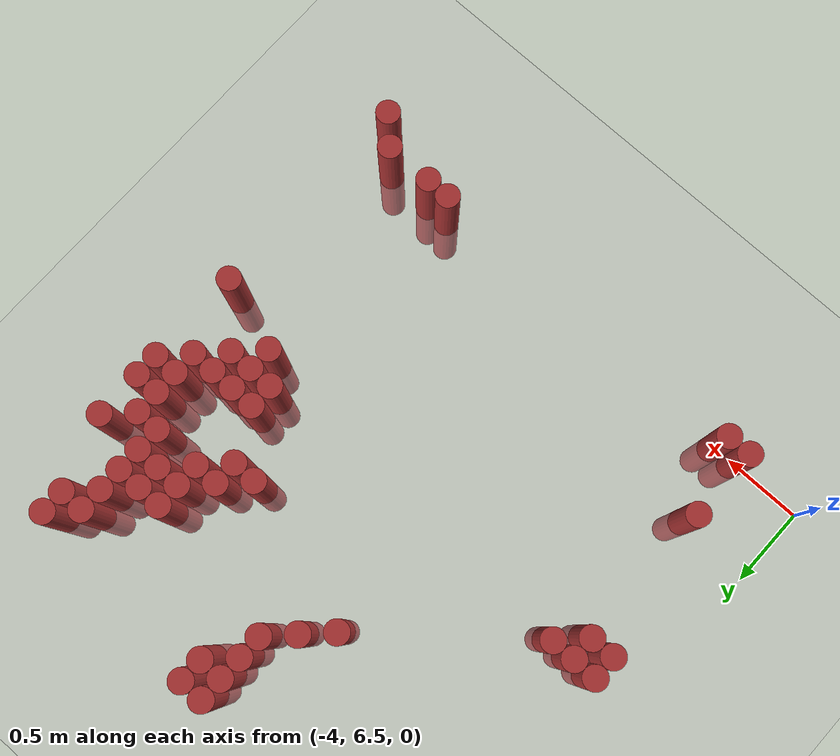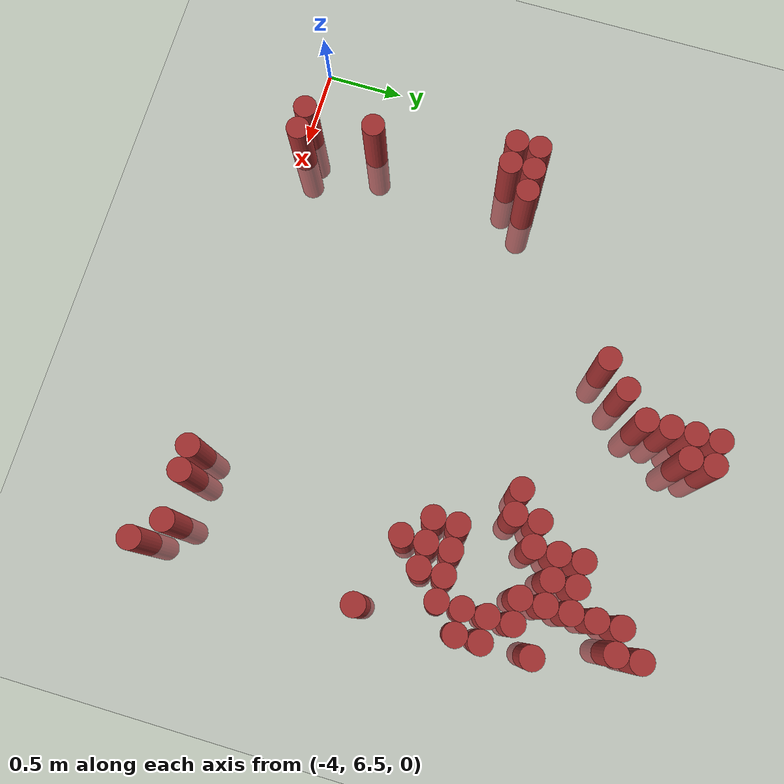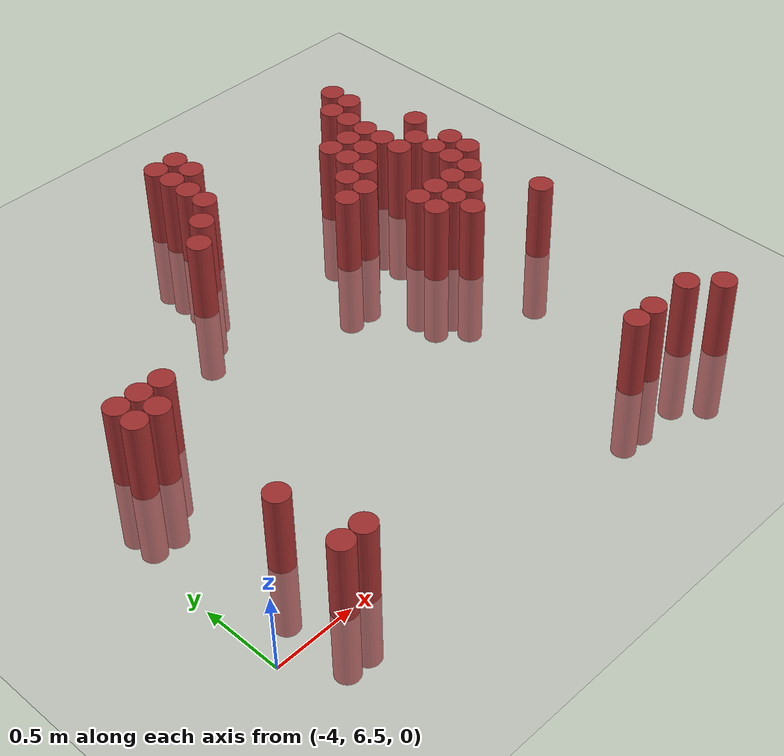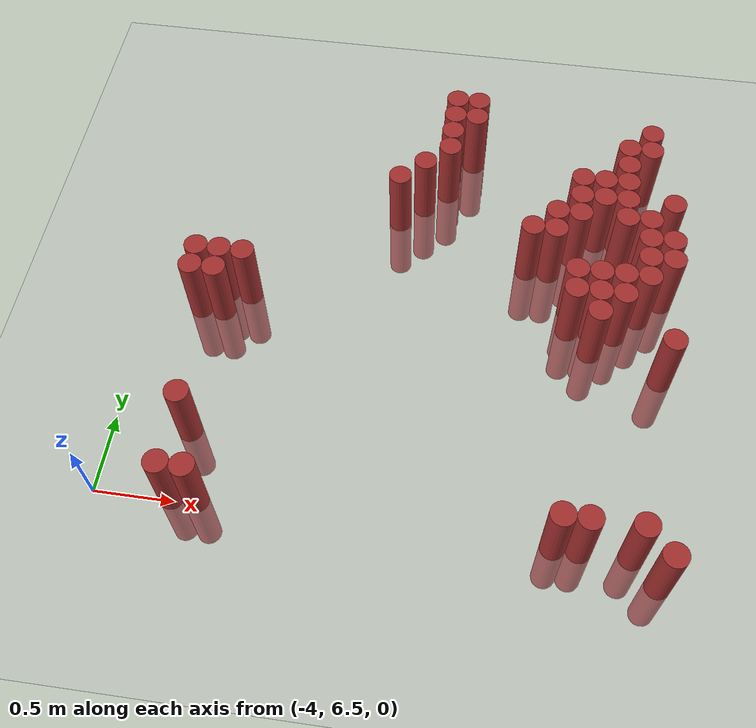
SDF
<sdf version="1.6">
 <world name="default">
  <model name="ground_plane">
   <static>1</static>
   <link name="link">
    <collision name="collision">
     <geometry><plane><normal>0 0 1</normal><size>100 100</size></plane></geometry>
     <surface><friction><ode><mu>100</mu><mu2>50</mu2></ode></friction></surface>
    </collision>
    <visual name="visual">
     <cast_shadows>0</cast_shadows>
     <geometry><plane><normal>0 0 1</normal><size>100 100</size></plane></geometry>
     <material>
      <script><uri>file://media/materials/scripts/gazebo.material</uri><name>Gazebo/Grey</name></script>
     </material>
    </visual>
   </link>
  </model>
  <model name="unit_cylinder_161">
   <static>1</static>
   <pose>-3.675000 7.875000 0.000000 0.000000 0.000000 0.000000</pose>
   <link name="link">
    <inertial>
     <mass>1</mass>
     <inertia><ixx>0.145833</ixx><ixy>0</ixy><ixz>0</ixz><iyy>0.145833</iyy><iyz>0</iyz><izz>0.125</izz></inertia>
    </inertial>
    <collision name="collision">
     <geometry><cylinder><radius>0.075000</radius><length>1</length></cylinder></geometry>
    </collision>
    <visual name="visual">
     <geometry><cylinder><radius>0.075000</radius><length>1</length></cylinder></geometry>
     <material>
      <ambient>0.648000 0.192000 0.192000 1</ambient>
      <diffuse>0.648000 0.192000 0.192000 1</diffuse>
     </material>
     <material>
      <script><name>Gazebo/Grey</name><uri>file://media/materials/scripts/gazebo.material</uri></script>
     </material>
    </visual>
   </link>
  </model>
  <model name="unit_cylinder_162">
   <static>1</static>
   <pose>-3.675000 8.025000 0.000000 0.000000 0.000000 0.000000</pose>
   <link name="link">
    <inertial>
     <mass>1</mass>
     <inertia><ixx>0.145833</ixx><ixy>0</ixy><ixz>0</ixz><iyy>0.145833</iyy><iyz>0</iyz><izz>0.125</izz></inertia>
    </inertial>
    <collision name="collision">
     <geometry><cylinder><radius>0.075000</radius><length>1</length></cylinder></geometry>
    </collision>
    <visual name="visual">
     <geometry><cylinder><radius>0.075000</radius><length>1</length></cylinder></geometry>
     <material>
      <ambient>0.648000 0.192000 0.192000 1</ambient>
      <diffuse>0.648000 0.192000 0.192000 1</diffuse>
     </material>
     <material>
      <script><name>Gazebo/Grey</name><uri>file://media/materials/scripts/gazebo.material</uri></script>
     </material>
    </visual>
   </link>
  </model>
  <model name="unit_cylinder_163">
   <static>1</static>
   <pose>-3.525000 6.525000 0.000000 0.000000 0.000000 0.000000</pose>
   <link name="link">
    <inertial>
     <mass>1</mass>
     <inertia><ixx>0.145833</ixx><ixy>0</ixy><ixz>0</ixz><iyy>0.145833</iyy><iyz>0</iyz><izz>0.125</izz></inertia>
    </inertial>
    <collision name="collision">
     <geometry><cylinder><radius>0.075000</radius><length>1</length></cylinder></geometry>
    </collision>
    <visual name="visual">
     <geometry><cylinder><radius>0.075000</radius><length>1</length></cylinder></geometry>
     <material>
      <ambient>0.648000 0.192000 0.192000 1</ambient>
      <diffuse>0.648000 0.192000 0.192000 1</diffuse>
     </material>
     <material>
      <script><name>Gazebo/Grey</name><uri>file://media/materials/scripts/gazebo.material</uri></script>
     </material>
    </visual>
   </link>
  </model>
  <model name="unit_cylinder_164">
   <static>1</static>
   <pose>-3.525000 6.975000 0.000000 0.000000 0.000000 0.000000</pose>
   <link name="link">
    <inertial>
     <mass>1</mass>
     <inertia><ixx>0.145833</ixx><ixy>0</ixy><ixz>0</ixz><iyy>0.145833</iyy><iyz>0</iyz><izz>0.125</izz></inertia>
    </inertial>
    <collision name="collision">
     <geometry><cylinder><radius>0.075000</radius><length>1</length></cylinder></geometry>
    </collision>
    <visual name="visual">
     <geometry><cylinder><radius>0.075000</radius><length>1</length></cylinder></geometry>
     <material>
      <ambient>0.648000 0.192000 0.192000 1</ambient>
      <diffuse>0.648000 0.192000 0.192000 1</diffuse>
     </material>
     <material>
      <script><name>Gazebo/Grey</name><uri>file://media/materials/scripts/gazebo.material</uri></script>
     </material>
    </visual>
   </link>
  </model>
  <model name="unit_cylinder_165">
   <static>1</static>
   <pose>-3.525000 7.875000 0.000000 0.000000 0.000000 0.000000</pose>
   <link name="link">
    <inertial>
     <mass>1</mass>
     <inertia><ixx>0.145833</ixx><ixy>0</ixy><ixz>0</ixz><iyy>0.145833</iyy><iyz>0</iyz><izz>0.125</izz></inertia>
    </inertial>
    <collision name="collision">
     <geometry><cylinder><radius>0.075000</radius><length>1</length></cylinder></geometry>
    </collision>
    <visual name="visual">
     <geometry><cylinder><radius>0.075000</radius><length>1</length></cylinder></geometry>
     <material>
      <ambient>0.648000 0.192000 0.192000 1</ambient>
      <diffuse>0.648000 0.192000 0.192000 1</diffuse>
     </material>
     <material>
      <script><name>Gazebo/Grey</name><uri>file://media/materials/scripts/gazebo.material</uri></script>
     </material>
    </visual>
   </link>
  </model>
  <model name="unit_cylinder_166">
   <static>1</static>
   <pose>-3.525000 8.025000 0.000000 0.000000 0.000000 0.000000</pose>
   <link name="link">
    <inertial>
     <mass>1</mass>
     <inertia><ixx>0.145833</ixx><ixy>0</ixy><ixz>0</ixz><iyy>0.145833</iyy><iyz>0</iyz><izz>0.125</izz></inertia>
    </inertial>
    <collision name="collision">
     <geometry><cylinder><radius>0.075000</radius><length>1</length></cylinder></geometry>
    </collision>
    <visual name="visual">
     <geometry><cylinder><radius>0.075000</radius><length>1</length></cylinder></geometry>
     <material>
      <ambient>0.648000 0.192000 0.192000 1</ambient>
      <diffuse>0.648000 0.192000 0.192000 1</diffuse>
     </material>
     <material>
      <script><name>Gazebo/Grey</name><uri>file://media/materials/scripts/gazebo.material</uri></script>
     </material>
    </visual>
   </link>
  </model>
  <model name="unit_cylinder_167">
   <static>1</static>
   <pose>-3.375000 6.525000 0.000000 0.000000 0.000000 0.000000</pose>
   <link name="link">
    <inertial>
     <mass>1</mass>
     <inertia><ixx>0.145833</ixx><ixy>0</ixy><ixz>0</ixz><iyy>0.145833</iyy><iyz>0</iyz><izz>0.125</izz></inertia>
    </inertial>
    <collision name="collision">
     <geometry><cylinder><radius>0.075000</radius><length>1</length></cylinder></geometry>
    </collision>
    <visual name="visual">
     <geometry><cylinder><radius>0.075000</radius><length>1</length></cylinder></geometry>
     <material>
      <ambient>0.648000 0.192000 0.192000 1</ambient>
      <diffuse>0.648000 0.192000 0.192000 1</diffuse>
     </material>
     <material>
      <script><name>Gazebo/Grey</name><uri>file://media/materials/scripts/gazebo.material</uri></script>
     </material>
    </visual>
   </link>
  </model>
  <model name="unit_cylinder_168">
   <static>1</static>
   <pose>-3.375000 8.025000 0.000000 0.000000 0.000000 0.000000</pose>
   <link name="link">
    <inertial>
     <mass>1</mass>
     <inertia><ixx>0.145833</ixx><ixy>0</ixy><ixz>0</ixz><iyy>0.145833</iyy><iyz>0</iyz><izz>0.125</izz></inertia>
    </inertial>
    <collision name="collision">
     <geometry><cylinder><radius>0.075000</radius><length>1</length></cylinder></geometry>
    </collision>
    <visual name="visual">
     <geometry><cylinder><radius>0.075000</radius><length>1</length></cylinder></geometry>
     <material>
      <ambient>0.648000 0.192000 0.192000 1</ambient>
      <diffuse>0.648000 0.192000 0.192000 1</diffuse>
     </material>
     <material>
      <script><name>Gazebo/Grey</name><uri>file://media/materials/scripts/gazebo.material</uri></script>
     </material>
    </visual>
   </link>
  </model>
  <model name="unit_cylinder_174">
   <static>1</static>
   <pose>-2.475000 8.775000 0.000000 0.000000 0.000000 0.000000</pose>
   <link name="link">
    <inertial>
     <mass>1</mass>
     <inertia><ixx>0.145833</ixx><ixy>0</ixy><ixz>0</ixz><iyy>0.145833</iyy><iyz>0</iyz><izz>0.125</izz></inertia>
    </inertial>
    <collision name="collision">
     <geometry><cylinder><radius>0.075000</radius><length>1</length></cylinder></geometry>
    </collision>
    <visual name="visual">
     <geometry><cylinder><radius>0.075000</radius><length>1</length></cylinder></geometry>
     <material>
      <ambient>0.648000 0.192000 0.192000 1</ambient>
      <diffuse>0.648000 0.192000 0.192000 1</diffuse>
     </material>
     <material>
      <script><name>Gazebo/Grey</name><uri>file://media/materials/scripts/gazebo.material</uri></script>
     </material>
    </visual>
   </link>
  </model>
  <model name="unit_cylinder_177">
   <static>1</static>
   <pose>-2.325000 8.925000 0.000000 0.000000 0.000000 0.000000</pose>
   <link name="link">
    <inertial>
     <mass>1</mass>
     <inertia><ixx>0.145833</ixx><ixy>0</ixy><ixz>0</ixz><iyy>0.145833</iyy><iyz>0</iyz><izz>0.125</izz></inertia>
    </inertial>
    <collision name="collision">
     <geometry><cylinder><radius>0.075000</radius><length>1</length></cylinder></geometry>
    </collision>
    <visual name="visual">
     <geometry><cylinder><radius>0.075000</radius><length>1</length></cylinder></geometry>
     <material>
      <ambient>0.648000 0.192000 0.192000 1</ambient>
      <diffuse>0.648000 0.192000 0.192000 1</diffuse>
     </material>
     <material>
      <script><name>Gazebo/Grey</name><uri>file://media/materials/scripts/gazebo.material</uri></script>
     </material>
    </visual>
   </link>
  </model>
  <model name="unit_cylinder_180">
   <static>1</static>
   <pose>-2.175000 9.075000 0.000000 0.000000 0.000000 0.000000</pose>
   <link name="link">
    <inertial>
     <mass>1</mass>
     <inertia><ixx>0.145833</ixx><ixy>0</ixy><ixz>0</ixz><iyy>0.145833</iyy><iyz>0</iyz><izz>0.125</izz></inertia>
    </inertial>
    <collision name="collision">
     <geometry><cylinder><radius>0.075000</radius><length>1</length></cylinder></geometry>
    </collision>
    <visual name="visual">
     <geometry><cylinder><radius>0.075000</radius><length>1</length></cylinder></geometry>
     <material>
      <ambient>0.648000 0.192000 0.192000 1</ambient>
      <diffuse>0.648000 0.192000 0.192000 1</diffuse>
     </material>
     <material>
      <script><name>Gazebo/Grey</name><uri>file://media/materials/scripts/gazebo.material</uri></script>
     </material>
    </visual>
   </link>
  </model>
  <model name="unit_cylinder_181">
   <static>1</static>
   <pose>-2.175000 9.225000 0.000000 0.000000 0.000000 0.000000</pose>
   <link name="link">
    <inertial>
     <mass>1</mass>
     <inertia><ixx>0.145833</ixx><ixy>0</ixy><ixz>0</ixz><iyy>0.145833</iyy><iyz>0</iyz><izz>0.125</izz></inertia>
    </inertial>
    <collision name="collision">
     <geometry><cylinder><radius>0.075000</radius><length>1</length></cylinder></geometry>
    </collision>
    <visual name="visual">
     <geometry><cylinder><radius>0.075000</radius><length>1</length></cylinder></geometry>
     <material>
      <ambient>0.648000 0.192000 0.192000 1</ambient>
      <diffuse>0.648000 0.192000 0.192000 1</diffuse>
     </material>
     <material>
      <script><name>Gazebo/Grey</name><uri>file://media/materials/scripts/gazebo.material</uri></script>
     </material>
    </visual>
   </link>
  </model>
  <model name="unit_cylinder_182">
   <static>1</static>
   <pose>-2.175000 9.375000 0.000000 0.000000 0.000000 0.000000</pose>
   <link name="link">
    <inertial>
     <mass>1</mass>
     <inertia><ixx>0.145833</ixx><ixy>0</ixy><ixz>0</ixz><iyy>0.145833</iyy><iyz>0</iyz><izz>0.125</izz></inertia>
    </inertial>
    <collision name="collision">
     <geometry><cylinder><radius>0.075000</radius><length>1</length></cylinder></geometry>
    </collision>
    <visual name="visual">
     <geometry><cylinder><radius>0.075000</radius><length>1</length></cylinder></geometry>
     <material>
      <ambient>0.648000 0.192000 0.192000 1</ambient>
      <diffuse>0.648000 0.192000 0.192000 1</diffuse>
     </material>
     <material>
      <script><name>Gazebo/Grey</name><uri>file://media/materials/scripts/gazebo.material</uri></script>
     </material>
    </visual>
   </link>
  </model>
  <model name="unit_cylinder_183">
   <static>1</static>
   <pose>-2.175000 9.525000 0.000000 0.000000 0.000000 0.000000</pose>
   <link name="link">
    <inertial>
     <mass>1</mass>
     <inertia><ixx>0.145833</ixx><ixy>0</ixy><ixz>0</ixz><iyy>0.145833</iyy><iyz>0</iyz><izz>0.125</izz></inertia>
    </inertial>
    <collision name="collision">
     <geometry><cylinder><radius>0.075000</radius><length>1</length></cylinder></geometry>
    </collision>
    <visual name="visual">
     <geometry><cylinder><radius>0.075000</radius><length>1</length></cylinder></geometry>
     <material>
      <ambient>0.648000 0.192000 0.192000 1</ambient>
      <diffuse>0.648000 0.192000 0.192000 1</diffuse>
     </material>
     <material>
      <script><name>Gazebo/Grey</name><uri>file://media/materials/scripts/gazebo.material</uri></script>
     </material>
    </visual>
   </link>
  </model>
  <model name="unit_cylinder_184">
   <static>1</static>
   <pose>-2.025000 9.375000 0.000000 0.000000 0.000000 0.000000</pose>
   <link name="link">
    <inertial>
     <mass>1</mass>
     <inertia><ixx>0.145833</ixx><ixy>0</ixy><ixz>0</ixz><iyy>0.145833</iyy><iyz>0</iyz><izz>0.125</izz></inertia>
    </inertial>
    <collision name="collision">
     <geometry><cylinder><radius>0.075000</radius><length>1</length></cylinder></geometry>
    </collision>
    <visual name="visual">
     <geometry><cylinder><radius>0.075000</radius><length>1</length></cylinder></geometry>
     <material>
      <ambient>0.648000 0.192000 0.192000 1</ambient>
      <diffuse>0.648000 0.192000 0.192000 1</diffuse>
     </material>
     <material>
      <script><name>Gazebo/Grey</name><uri>file://media/materials/scripts/gazebo.material</uri></script>
     </material>
    </visual>
   </link>
  </model>
  <model name="unit_cylinder_185">
   <static>1</static>
   <pose>-2.025000 9.525000 0.000000 0.000000 0.000000 0.000000</pose>
   <link name="link">
    <inertial>
     <mass>1</mass>
     <inertia><ixx>0.145833</ixx><ixy>0</ixy><ixz>0</ixz><iyy>0.145833</iyy><iyz>0</iyz><izz>0.125</izz></inertia>
    </inertial>
    <collision name="collision">
     <geometry><cylinder><radius>0.075000</radius><length>1</length></cylinder></geometry>
    </collision>
    <visual name="visual">
     <geometry><cylinder><radius>0.075000</radius><length>1</length></cylinder></geometry>
     <material>
      <ambient>0.648000 0.192000 0.192000 1</ambient>
      <diffuse>0.648000 0.192000 0.192000 1</diffuse>
     </material>
     <material>
      <script><name>Gazebo/Grey</name><uri>file://media/materials/scripts/gazebo.material</uri></script>
     </material>
    </visual>
   </link>
  </model>
  <model name="unit_cylinder_186">
   <static>1</static>
   <pose>-1.575000 8.475000 0.000000 0.000000 0.000000 0.000000</pose>
   <link name="link">
    <inertial>
     <mass>1</mass>
     <inertia><ixx>0.145833</ixx><ixy>0</ixy><ixz>0</ixz><iyy>0.145833</iyy><iyz>0</iyz><izz>0.125</izz></inertia>
    </inertial>
    <collision name="collision">
     <geometry><cylinder><radius>0.075000</radius><length>1</length></cylinder></geometry>
    </collision>
    <visual name="visual">
     <geometry><cylinder><radius>0.075000</radius><length>1</length></cylinder></geometry>
     <material>
      <ambient>0.648000 0.192000 0.192000 1</ambient>
      <diffuse>0.648000 0.192000 0.192000 1</diffuse>
     </material>
     <material>
      <script><name>Gazebo/Grey</name><uri>file://media/materials/scripts/gazebo.material</uri></script>
     </material>
    </visual>
   </link>
  </model>
  <model name="unit_cylinder_187">
   <static>1</static>
   <pose>-1.425000 8.475000 0.000000 0.000000 0.000000 0.000000</pose>
   <link name="link">
    <inertial>
     <mass>1</mass>
     <inertia><ixx>0.145833</ixx><ixy>0</ixy><ixz>0</ixz><iyy>0.145833</iyy><iyz>0</iyz><izz>0.125</izz></inertia>
    </inertial>
    <collision name="collision">
     <geometry><cylinder><radius>0.075000</radius><length>1</length></cylinder></geometry>
    </collision>
    <visual name="visual">
     <geometry><cylinder><radius>0.075000</radius><length>1</length></cylinder></geometry>
     <material>
      <ambient>0.648000 0.192000 0.192000 1</ambient>
      <diffuse>0.648000 0.192000 0.192000 1</diffuse>
     </material>
     <material>
      <script><name>Gazebo/Grey</name><uri>file://media/materials/scripts/gazebo.material</uri></script>
     </material>
    </visual>
   </link>
  </model>
  <model name="unit_cylinder_188">
   <static>1</static>
   <pose>-1.425000 8.625000 0.000000 0.000000 0.000000 0.000000</pose>
   <link name="link">
    <inertial>
     <mass>1</mass>
     <inertia><ixx>0.145833</ixx><ixy>0</ixy><ixz>0</ixz><iyy>0.145833</iyy><iyz>0</iyz><izz>0.125</izz></inertia>
    </inertial>
    <collision name="collision">
     <geometry><cylinder><radius>0.075000</radius><length>1</length></cylinder></geometry>
    </collision>
    <visual name="visual">
     <geometry><cylinder><radius>0.075000</radius><length>1</length></cylinder></geometry>
     <material>
      <ambient>0.648000 0.192000 0.192000 1</ambient>
      <diffuse>0.648000 0.192000 0.192000 1</diffuse>
     </material>
     <material>
      <script><name>Gazebo/Grey</name><uri>file://media/materials/scripts/gazebo.material</uri></script>
     </material>
    </visual>
   </link>
  </model>
  <model name="unit_cylinder_190">
   <static>1</static>
   <pose>-1.275000 6.525000 0.000000 0.000000 0.000000 0.000000</pose>
   <link name="link">
    <inertial>
     <mass>1</mass>
     <inertia><ixx>0.145833</ixx><ixy>0</ixy><ixz>0</ixz><iyy>0.145833</iyy><iyz>0</iyz><izz>0.125</izz></inertia>
    </inertial>
    <collision name="collision">
     <geometry><cylinder><radius>0.075000</radius><length>1</length></cylinder></geometry>
    </collision>
    <visual name="visual">
     <geometry><cylinder><radius>0.075000</radius><length>1</length></cylinder></geometry>
     <material>
      <ambient>0.648000 0.192000 0.192000 1</ambient>
      <diffuse>0.648000 0.192000 0.192000 1</diffuse>
     </material>
     <material>
      <script><name>Gazebo/Grey</name><uri>file://media/materials/scripts/gazebo.material</uri></script>
     </material>
    </visual>
   </link>
  </model>
  <model name="unit_cylinder_191">
   <static>1</static>
   <pose>-1.275000 8.025000 0.000000 0.000000 0.000000 0.000000</pose>
   <link name="link">
    <inertial>
     <mass>1</mass>
     <inertia><ixx>0.145833</ixx><ixy>0</ixy><ixz>0</ixz><iyy>0.145833</iyy><iyz>0</iyz><izz>0.125</izz></inertia>
    </inertial>
    <collision name="collision">
     <geometry><cylinder><radius>0.075000</radius><length>1</length></cylinder></geometry>
    </collision>
    <visual name="visual">
     <geometry><cylinder><radius>0.075000</radius><length>1</length></cylinder></geometry>
     <material>
      <ambient>0.648000 0.192000 0.192000 1</ambient>
      <diffuse>0.648000 0.192000 0.192000 1</diffuse>
     </material>
     <material>
      <script><name>Gazebo/Grey</name><uri>file://media/materials/scripts/gazebo.material</uri></script>
     </material>
    </visual>
   </link>
  </model>
  <model name="unit_cylinder_192">
   <static>1</static>
   <pose>-1.275000 8.175000 0.000000 0.000000 0.000000 0.000000</pose>
   <link name="link">
    <inertial>
     <mass>1</mass>
     <inertia><ixx>0.145833</ixx><ixy>0</ixy><ixz>0</ixz><iyy>0.145833</iyy><iyz>0</iyz><izz>0.125</izz></inertia>
    </inertial>
    <collision name="collision">
     <geometry><cylinder><radius>0.075000</radius><length>1</length></cylinder></geometry>
    </collision>
    <visual name="visual">
     <geometry><cylinder><radius>0.075000</radius><length>1</length></cylinder></geometry>
     <material>
      <ambient>0.648000 0.192000 0.192000 1</ambient>
      <diffuse>0.648000 0.192000 0.192000 1</diffuse>
     </material>
     <material>
      <script><name>Gazebo/Grey</name><uri>file://media/materials/scripts/gazebo.material</uri></script>
     </material>
    </visual>
   </link>
  </model>
  <model name="unit_cylinder_193">
   <static>1</static>
   <pose>-1.275000 8.625000 0.000000 0.000000 0.000000 0.000000</pose>
   <link name="link">
    <inertial>
     <mass>1</mass>
     <inertia><ixx>0.145833</ixx><ixy>0</ixy><ixz>0</ixz><iyy>0.145833</iyy><iyz>0</iyz><izz>0.125</izz></inertia>
    </inertial>
    <collision name="collision">
     <geometry><cylinder><radius>0.075000</radius><length>1</length></cylinder></geometry>
    </collision>
    <visual name="visual">
     <geometry><cylinder><radius>0.075000</radius><length>1</length></cylinder></geometry>
     <material>
      <ambient>0.648000 0.192000 0.192000 1</ambient>
      <diffuse>0.648000 0.192000 0.192000 1</diffuse>
     </material>
     <material>
      <script><name>Gazebo/Grey</name><uri>file://media/materials/scripts/gazebo.material</uri></script>
     </material>
    </visual>
   </link>
  </model>
  <model name="unit_cylinder_194">
   <static>1</static>
   <pose>-1.275000 8.775000 0.000000 0.000000 0.000000 0.000000</pose>
   <link name="link">
    <inertial>
     <mass>1</mass>
     <inertia><ixx>0.145833</ixx><ixy>0</ixy><ixz>0</ixz><iyy>0.145833</iyy><iyz>0</iyz><izz>0.125</izz></inertia>
    </inertial>
    <collision name="collision">
     <geometry><cylinder><radius>0.075000</radius><length>1</length></cylinder></geometry>
    </collision>
    <visual name="visual">
     <geometry><cylinder><radius>0.075000</radius><length>1</length></cylinder></geometry>
     <material>
      <ambient>0.648000 0.192000 0.192000 1</ambient>
      <diffuse>0.648000 0.192000 0.192000 1</diffuse>
     </material>
     <material>
      <script><name>Gazebo/Grey</name><uri>file://media/materials/scripts/gazebo.material</uri></script>
     </material>
    </visual>
   </link>
  </model>
  <model name="unit_cylinder_195">
   <static>1</static>
   <pose>-1.275000 8.925000 0.000000 0.000000 0.000000 0.000000</pose>
   <link name="link">
    <inertial>
     <mass>1</mass>
     <inertia><ixx>0.145833</ixx><ixy>0</ixy><ixz>0</ixz><iyy>0.145833</iyy><iyz>0</iyz><izz>0.125</izz></inertia>
    </inertial>
    <collision name="collision">
     <geometry><cylinder><radius>0.075000</radius><length>1</length></cylinder></geometry>
    </collision>
    <visual name="visual">
     <geometry><cylinder><radius>0.075000</radius><length>1</length></cylinder></geometry>
     <material>
      <ambient>0.648000 0.192000 0.192000 1</ambient>
      <diffuse>0.648000 0.192000 0.192000 1</diffuse>
     </material>
     <material>
      <script><name>Gazebo/Grey</name><uri>file://media/materials/scripts/gazebo.material</uri></script>
     </material>
    </visual>
   </link>
  </model>
  <model name="unit_cylinder_199">
   <static>1</static>
   <pose>-1.125000 6.525000 0.000000 0.000000 0.000000 0.000000</pose>
   <link name="link">
    <inertial>
     <mass>1</mass>
     <inertia><ixx>0.145833</ixx><ixy>0</ixy><ixz>0</ixz><iyy>0.145833</iyy><iyz>0</iyz><izz>0.125</izz></inertia>
    </inertial>
    <collision name="collision">
     <geometry><cylinder><radius>0.075000</radius><length>1</length></cylinder></geometry>
    </collision>
    <visual name="visual">
     <geometry><cylinder><radius>0.075000</radius><length>1</length></cylinder></geometry>
     <material>
      <ambient>0.648000 0.192000 0.192000 1</ambient>
      <diffuse>0.648000 0.192000 0.192000 1</diffuse>
     </material>
     <material>
      <script><name>Gazebo/Grey</name><uri>file://media/materials/scripts/gazebo.material</uri></script>
     </material>
    </visual>
   </link>
  </model>
  <model name="unit_cylinder_200">
   <static>1</static>
   <pose>-1.125000 7.875000 0.000000 0.000000 0.000000 0.000000</pose>
   <link name="link">
    <inertial>
     <mass>1</mass>
     <inertia><ixx>0.145833</ixx><ixy>0</ixy><ixz>0</ixz><iyy>0.145833</iyy><iyz>0</iyz><izz>0.125</izz></inertia>
    </inertial>
    <collision name="collision">
     <geometry><cylinder><radius>0.075000</radius><length>1</length></cylinder></geometry>
    </collision>
    <visual name="visual">
     <geometry><cylinder><radius>0.075000</radius><length>1</length></cylinder></geometry>
     <material>
      <ambient>0.648000 0.192000 0.192000 1</ambient>
      <diffuse>0.648000 0.192000 0.192000 1</diffuse>
     </material>
     <material>
      <script><name>Gazebo/Grey</name><uri>file://media/materials/scripts/gazebo.material</uri></script>
     </material>
    </visual>
   </link>
  </model>
  <model name="unit_cylinder_201">
   <static>1</static>
   <pose>-1.125000 8.025000 0.000000 0.000000 0.000000 0.000000</pose>
   <link name="link">
    <inertial>
     <mass>1</mass>
     <inertia><ixx>0.145833</ixx><ixy>0</ixy><ixz>0</ixz><iyy>0.145833</iyy><iyz>0</iyz><izz>0.125</izz></inertia>
    </inertial>
    <collision name="collision">
     <geometry><cylinder><radius>0.075000</radius><length>1</length></cylinder></geometry>
    </collision>
    <visual name="visual">
     <geometry><cylinder><radius>0.075000</radius><length>1</length></cylinder></geometry>
     <material>
      <ambient>0.648000 0.192000 0.192000 1</ambient>
      <diffuse>0.648000 0.192000 0.192000 1</diffuse>
     </material>
     <material>
      <script><name>Gazebo/Grey</name><uri>file://media/materials/scripts/gazebo.material</uri></script>
     </material>
    </visual>
   </link>
  </model>
  <model name="unit_cylinder_202">
   <static>1</static>
   <pose>-1.125000 8.175000 0.000000 0.000000 0.000000 0.000000</pose>
   <link name="link">
    <inertial>
     <mass>1</mass>
     <inertia><ixx>0.145833</ixx><ixy>0</ixy><ixz>0</ixz><iyy>0.145833</iyy><iyz>0</iyz><izz>0.125</izz></inertia>
    </inertial>
    <collision name="collision">
     <geometry><cylinder><radius>0.075000</radius><length>1</length></cylinder></geometry>
    </collision>
    <visual name="visual">
     <geometry><cylinder><radius>0.075000</radius><length>1</length></cylinder></geometry>
     <material>
      <ambient>0.648000 0.192000 0.192000 1</ambient>
      <diffuse>0.648000 0.192000 0.192000 1</diffuse>
     </material>
     <material>
      <script><name>Gazebo/Grey</name><uri>file://media/materials/scripts/gazebo.material</uri></script>
     </material>
    </visual>
   </link>
  </model>
  <model name="unit_cylinder_203">
   <static>1</static>
   <pose>-1.125000 8.775000 0.000000 0.000000 0.000000 0.000000</pose>
   <link name="link">
    <inertial>
     <mass>1</mass>
     <inertia><ixx>0.145833</ixx><ixy>0</ixy><ixz>0</ixz><iyy>0.145833</iyy><iyz>0</iyz><izz>0.125</izz></inertia>
    </inertial>
    <collision name="collision">
     <geometry><cylinder><radius>0.075000</radius><length>1</length></cylinder></geometry>
    </collision>
    <visual name="visual">
     <geometry><cylinder><radius>0.075000</radius><length>1</length></cylinder></geometry>
     <material>
      <ambient>0.648000 0.192000 0.192000 1</ambient>
      <diffuse>0.648000 0.192000 0.192000 1</diffuse>
     </material>
     <material>
      <script><name>Gazebo/Grey</name><uri>file://media/materials/scripts/gazebo.material</uri></script>
     </material>
    </visual>
   </link>
  </model>
  <model name="unit_cylinder_204">
   <static>1</static>
   <pose>-1.125000 8.925000 0.000000 0.000000 0.000000 0.000000</pose>
   <link name="link">
    <inertial>
     <mass>1</mass>
     <inertia><ixx>0.145833</ixx><ixy>0</ixy><ixz>0</ixz><iyy>0.145833</iyy><iyz>0</iyz><izz>0.125</izz></inertia>
    </inertial>
    <collision name="collision">
     <geometry><cylinder><radius>0.075000</radius><length>1</length></cylinder></geometry>
    </collision>
    <visual name="visual">
     <geometry><cylinder><radius>0.075000</radius><length>1</length></cylinder></geometry>
     <material>
      <ambient>0.648000 0.192000 0.192000 1</ambient>
      <diffuse>0.648000 0.192000 0.192000 1</diffuse>
     </material>
     <material>
      <script><name>Gazebo/Grey</name><uri>file://media/materials/scripts/gazebo.material</uri></script>
     </material>
    </visual>
   </link>
  </model>
  <model name="unit_cylinder_210">
   <static>1</static>
   <pose>-0.975000 8.025000 0.000000 0.000000 0.000000 0.000000</pose>
   <link name="link">
    <inertial>
     <mass>1</mass>
     <inertia><ixx>0.145833</ixx><ixy>0</ixy><ixz>0</ixz><iyy>0.145833</iyy><iyz>0</iyz><izz>0.125</izz></inertia>
    </inertial>
    <collision name="collision">
     <geometry><cylinder><radius>0.075000</radius><length>1</length></cylinder></geometry>
    </collision>
    <visual name="visual">
     <geometry><cylinder><radius>0.075000</radius><length>1</length></cylinder></geometry>
     <material>
      <ambient>0.648000 0.192000 0.192000 1</ambient>
      <diffuse>0.648000 0.192000 0.192000 1</diffuse>
     </material>
     <material>
      <script><name>Gazebo/Grey</name><uri>file://media/materials/scripts/gazebo.material</uri></script>
     </material>
    </visual>
   </link>
  </model>
  <model name="unit_cylinder_211">
   <static>1</static>
   <pose>-0.975000 8.175000 0.000000 0.000000 0.000000 0.000000</pose>
   <link name="link">
    <inertial>
     <mass>1</mass>
     <inertia><ixx>0.145833</ixx><ixy>0</ixy><ixz>0</ixz><iyy>0.145833</iyy><iyz>0</iyz><izz>0.125</izz></inertia>
    </inertial>
    <collision name="collision">
     <geometry><cylinder><radius>0.075000</radius><length>1</length></cylinder></geometry>
    </collision>
    <visual name="visual">
     <geometry><cylinder><radius>0.075000</radius><length>1</length></cylinder></geometry>
     <material>
      <ambient>0.648000 0.192000 0.192000 1</ambient>
      <diffuse>0.648000 0.192000 0.192000 1</diffuse>
     </material>
     <material>
      <script><name>Gazebo/Grey</name><uri>file://media/materials/scripts/gazebo.material</uri></script>
     </material>
    </visual>
   </link>
  </model>
  <model name="unit_cylinder_212">
   <static>1</static>
   <pose>-0.975000 8.625000 0.000000 0.000000 0.000000 0.000000</pose>
   <link name="link">
    <inertial>
     <mass>1</mass>
     <inertia><ixx>0.145833</ixx><ixy>0</ixy><ixz>0</ixz><iyy>0.145833</iyy><iyz>0</iyz><izz>0.125</izz></inertia>
    </inertial>
    <collision name="collision">
     <geometry><cylinder><radius>0.075000</radius><length>1</length></cylinder></geometry>
    </collision>
    <visual name="visual">
     <geometry><cylinder><radius>0.075000</radius><length>1</length></cylinder></geometry>
     <material>
      <ambient>0.648000 0.192000 0.192000 1</ambient>
      <diffuse>0.648000 0.192000 0.192000 1</diffuse>
     </material>
     <material>
      <script><name>Gazebo/Grey</name><uri>file://media/materials/scripts/gazebo.material</uri></script>
     </material>
    </visual>
   </link>
  </model>
  <model name="unit_cylinder_213">
   <static>1</static>
   <pose>-0.975000 8.775000 0.000000 0.000000 0.000000 0.000000</pose>
   <link name="link">
    <inertial>
     <mass>1</mass>
     <inertia><ixx>0.145833</ixx><ixy>0</ixy><ixz>0</ixz><iyy>0.145833</iyy><iyz>0</iyz><izz>0.125</izz></inertia>
    </inertial>
    <collision name="collision">
     <geometry><cylinder><radius>0.075000</radius><length>1</length></cylinder></geometry>
    </collision>
    <visual name="visual">
     <geometry><cylinder><radius>0.075000</radius><length>1</length></cylinder></geometry>
     <material>
      <ambient>0.648000 0.192000 0.192000 1</ambient>
      <diffuse>0.648000 0.192000 0.192000 1</diffuse>
     </material>
     <material>
      <script><name>Gazebo/Grey</name><uri>file://media/materials/scripts/gazebo.material</uri></script>
     </material>
    </visual>
   </link>
  </model>
  <model name="unit_cylinder_214">
   <static>1</static>
   <pose>-0.975000 8.925000 0.000000 0.000000 0.000000 0.000000</pose>
   <link name="link">
    <inertial>
     <mass>1</mass>
     <inertia><ixx>0.145833</ixx><ixy>0</ixy><ixz>0</ixz><iyy>0.145833</iyy><iyz>0</iyz><izz>0.125</izz></inertia>
    </inertial>
    <collision name="collision">
     <geometry><cylinder><radius>0.075000</radius><length>1</length></cylinder></geometry>
    </collision>
    <visual name="visual">
     <geometry><cylinder><radius>0.075000</radius><length>1</length></cylinder></geometry>
     <material>
      <ambient>0.648000 0.192000 0.192000 1</ambient>
      <diffuse>0.648000 0.192000 0.192000 1</diffuse>
     </material>
     <material>
      <script><name>Gazebo/Grey</name><uri>file://media/materials/scripts/gazebo.material</uri></script>
     </material>
    </visual>
   </link>
  </model>
  <model name="unit_cylinder_215">
   <static>1</static>
   <pose>-0.975000 9.075000 0.000000 0.000000 0.000000 0.000000</pose>
   <link name="link">
    <inertial>
     <mass>1</mass>
     <inertia><ixx>0.145833</ixx><ixy>0</ixy><ixz>0</ixz><iyy>0.145833</iyy><iyz>0</iyz><izz>0.125</izz></inertia>
    </inertial>
    <collision name="collision">
     <geometry><cylinder><radius>0.075000</radius><length>1</length></cylinder></geometry>
    </collision>
    <visual name="visual">
     <geometry><cylinder><radius>0.075000</radius><length>1</length></cylinder></geometry>
     <material>
      <ambient>0.648000 0.192000 0.192000 1</ambient>
      <diffuse>0.648000 0.192000 0.192000 1</diffuse>
     </material>
     <material>
      <script><name>Gazebo/Grey</name><uri>file://media/materials/scripts/gazebo.material</uri></script>
     </material>
    </visual>
   </link>
  </model>
  <model name="unit_cylinder_216">
   <static>1</static>
   <pose>-0.975000 9.225000 0.000000 0.000000 0.000000 0.000000</pose>
   <link name="link">
    <inertial>
     <mass>1</mass>
     <inertia><ixx>0.145833</ixx><ixy>0</ixy><ixz>0</ixz><iyy>0.145833</iyy><iyz>0</iyz><izz>0.125</izz></inertia>
    </inertial>
    <collision name="collision">
     <geometry><cylinder><radius>0.075000</radius><length>1</length></cylinder></geometry>
    </collision>
    <visual name="visual">
     <geometry><cylinder><radius>0.075000</radius><length>1</length></cylinder></geometry>
     <material>
      <ambient>0.648000 0.192000 0.192000 1</ambient>
      <diffuse>0.648000 0.192000 0.192000 1</diffuse>
     </material>
     <material>
      <script><name>Gazebo/Grey</name><uri>file://media/materials/scripts/gazebo.material</uri></script>
     </material>
    </visual>
   </link>
  </model>
  <model name="unit_cylinder_220">
   <static>1</static>
   <pose>-0.825000 6.525000 0.000000 0.000000 0.000000 0.000000</pose>
   <link name="link">
    <inertial>
     <mass>1</mass>
     <inertia><ixx>0.145833</ixx><ixy>0</ixy><ixz>0</ixz><iyy>0.145833</iyy><iyz>0</iyz><izz>0.125</izz></inertia>
    </inertial>
    <collision name="collision">
     <geometry><cylinder><radius>0.075000</radius><length>1</length></cylinder></geometry>
    </collision>
    <visual name="visual">
     <geometry><cylinder><radius>0.075000</radius><length>1</length></cylinder></geometry>
     <material>
      <ambient>0.648000 0.192000 0.192000 1</ambient>
      <diffuse>0.648000 0.192000 0.192000 1</diffuse>
     </material>
     <material>
      <script><name>Gazebo/Grey</name><uri>file://media/materials/scripts/gazebo.material</uri></script>
     </material>
    </visual>
   </link>
  </model>
  <model name="unit_cylinder_221">
   <static>1</static>
   <pose>-0.825000 8.175000 0.000000 0.000000 0.000000 0.000000</pose>
   <link name="link">
    <inertial>
     <mass>1</mass>
     <inertia><ixx>0.145833</ixx><ixy>0</ixy><ixz>0</ixz><iyy>0.145833</iyy><iyz>0</iyz><izz>0.125</izz></inertia>
    </inertial>
    <collision name="collision">
     <geometry><cylinder><radius>0.075000</radius><length>1</length></cylinder></geometry>
    </collision>
    <visual name="visual">
     <geometry><cylinder><radius>0.075000</radius><length>1</length></cylinder></geometry>
     <material>
      <ambient>0.648000 0.192000 0.192000 1</ambient>
      <diffuse>0.648000 0.192000 0.192000 1</diffuse>
     </material>
     <material>
      <script><name>Gazebo/Grey</name><uri>file://media/materials/scripts/gazebo.material</uri></script>
     </material>
    </visual>
   </link>
  </model>
  <model name="unit_cylinder_222">
   <static>1</static>
   <pose>-0.825000 8.325000 0.000000 0.000000 0.000000 0.000000</pose>
   <link name="link">
    <inertial>
     <mass>1</mass>
     <inertia><ixx>0.145833</ixx><ixy>0</ixy><ixz>0</ixz><iyy>0.145833</iyy><iyz>0</iyz><izz>0.125</izz></inertia>
    </inertial>
    <collision name="collision">
     <geometry><cylinder><radius>0.075000</radius><length>1</length></cylinder></geometry>
    </collision>
    <visual name="visual">
     <geometry><cylinder><radius>0.075000</radius><length>1</length></cylinder></geometry>
     <material>
      <ambient>0.648000 0.192000 0.192000 1</ambient>
      <diffuse>0.648000 0.192000 0.192000 1</diffuse>
     </material>
     <material>
      <script><name>Gazebo/Grey</name><uri>file://media/materials/scripts/gazebo.material</uri></script>
     </material>
    </visual>
   </link>
  </model>
  <model name="unit_cylinder_223">
   <static>1</static>
   <pose>-0.825000 8.475000 0.000000 0.000000 0.000000 0.000000</pose>
   <link name="link">
    <inertial>
     <mass>1</mass>
     <inertia><ixx>0.145833</ixx><ixy>0</ixy><ixz>0</ixz><iyy>0.145833</iyy><iyz>0</iyz><izz>0.125</izz></inertia>
    </inertial>
    <collision name="collision">
     <geometry><cylinder><radius>0.075000</radius><length>1</length></cylinder></geometry>
    </collision>
    <visual name="visual">
     <geometry><cylinder><radius>0.075000</radius><length>1</length></cylinder></geometry>
     <material>
      <ambient>0.648000 0.192000 0.192000 1</ambient>
      <diffuse>0.648000 0.192000 0.192000 1</diffuse>
     </material>
     <material>
      <script><name>Gazebo/Grey</name><uri>file://media/materials/scripts/gazebo.material</uri></script>
     </material>
    </visual>
   </link>
  </model>
  <model name="unit_cylinder_224">
   <static>1</static>
   <pose>-0.825000 8.625000 0.000000 0.000000 0.000000 0.000000</pose>
   <link name="link">
    <inertial>
     <mass>1</mass>
     <inertia><ixx>0.145833</ixx><ixy>0</ixy><ixz>0</ixz><iyy>0.145833</iyy><iyz>0</iyz><izz>0.125</izz></inertia>
    </inertial>
    <collision name="collision">
     <geometry><cylinder><radius>0.075000</radius><length>1</length></cylinder></geometry>
    </collision>
    <visual name="visual">
     <geometry><cylinder><radius>0.075000</radius><length>1</length></cylinder></geometry>
     <material>
      <ambient>0.648000 0.192000 0.192000 1</ambient>
      <diffuse>0.648000 0.192000 0.192000 1</diffuse>
     </material>
     <material>
      <script><name>Gazebo/Grey</name><uri>file://media/materials/scripts/gazebo.material</uri></script>
     </material>
    </visual>
   </link>
  </model>
  <model name="unit_cylinder_225">
   <static>1</static>
   <pose>-0.825000 9.225000 0.000000 0.000000 0.000000 0.000000</pose>
   <link name="link">
    <inertial>
     <mass>1</mass>
     <inertia><ixx>0.145833</ixx><ixy>0</ixy><ixz>0</ixz><iyy>0.145833</iyy><iyz>0</iyz><izz>0.125</izz></inertia>
    </inertial>
    <collision name="collision">
     <geometry><cylinder><radius>0.075000</radius><length>1</length></cylinder></geometry>
    </collision>
    <visual name="visual">
     <geometry><cylinder><radius>0.075000</radius><length>1</length></cylinder></geometry>
     <material>
      <ambient>0.648000 0.192000 0.192000 1</ambient>
      <diffuse>0.648000 0.192000 0.192000 1</diffuse>
     </material>
     <material>
      <script><name>Gazebo/Grey</name><uri>file://media/materials/scripts/gazebo.material</uri></script>
     </material>
    </visual>
   </link>
  </model>
  <model name="unit_cylinder_226">
   <static>1</static>
   <pose>-0.825000 9.375000 0.000000 0.000000 0.000000 0.000000</pose>
   <link name="link">
    <inertial>
     <mass>1</mass>
     <inertia><ixx>0.145833</ixx><ixy>0</ixy><ixz>0</ixz><iyy>0.145833</iyy><iyz>0</iyz><izz>0.125</izz></inertia>
    </inertial>
    <collision name="collision">
     <geometry><cylinder><radius>0.075000</radius><length>1</length></cylinder></geometry>
    </collision>
    <visual name="visual">
     <geometry><cylinder><radius>0.075000</radius><length>1</length></cylinder></geometry>
     <material>
      <ambient>0.648000 0.192000 0.192000 1</ambient>
      <diffuse>0.648000 0.192000 0.192000 1</diffuse>
     </material>
     <material>
      <script><name>Gazebo/Grey</name><uri>file://media/materials/scripts/gazebo.material</uri></script>
     </material>
    </visual>
   </link>
  </model>
  <model name="unit_cylinder_227">
   <static>1</static>
   <pose>-0.675000 6.375000 0.000000 0.000000 0.000000 0.000000</pose>
   <link name="link">
    <inertial>
     <mass>1</mass>
     <inertia><ixx>0.145833</ixx><ixy>0</ixy><ixz>0</ixz><iyy>0.145833</iyy><iyz>0</iyz><izz>0.125</izz></inertia>
    </inertial>
    <collision name="collision">
     <geometry><cylinder><radius>0.075000</radius><length>1</length></cylinder></geometry>
    </collision>
    <visual name="visual">
     <geometry><cylinder><radius>0.075000</radius><length>1</length></cylinder></geometry>
     <material>
      <ambient>0.648000 0.192000 0.192000 1</ambient>
      <diffuse>0.648000 0.192000 0.192000 1</diffuse>
     </material>
     <material>
      <script><name>Gazebo/Grey</name><uri>file://media/materials/scripts/gazebo.material</uri></script>
     </material>
    </visual>
   </link>
  </model>
  <model name="unit_cylinder_228">
   <static>1</static>
   <pose>-0.675000 7.725000 0.000000 0.000000 0.000000 0.000000</pose>
   <link name="link">
    <inertial>
     <mass>1</mass>
     <inertia><ixx>0.145833</ixx><ixy>0</ixy><ixz>0</ixz><iyy>0.145833</iyy><iyz>0</iyz><izz>0.125</izz></inertia>
    </inertial>
    <collision name="collision">
     <geometry><cylinder><radius>0.075000</radius><length>1</length></cylinder></geometry>
    </collision>
    <visual name="visual">
     <geometry><cylinder><radius>0.075000</radius><length>1</length></cylinder></geometry>
     <material>
      <ambient>0.648000 0.192000 0.192000 1</ambient>
      <diffuse>0.648000 0.192000 0.192000 1</diffuse>
     </material>
     <material>
      <script><name>Gazebo/Grey</name><uri>file://media/materials/scripts/gazebo.material</uri></script>
     </material>
    </visual>
   </link>
  </model>
  <model name="unit_cylinder_229">
   <static>1</static>
   <pose>-0.675000 8.325000 0.000000 0.000000 0.000000 0.000000</pose>
   <link name="link">
    <inertial>
     <mass>1</mass>
     <inertia><ixx>0.145833</ixx><ixy>0</ixy><ixz>0</ixz><iyy>0.145833</iyy><iyz>0</iyz><izz>0.125</izz></inertia>
    </inertial>
    <collision name="collision">
     <geometry><cylinder><radius>0.075000</radius><length>1</length></cylinder></geometry>
    </collision>
    <visual name="visual">
     <geometry><cylinder><radius>0.075000</radius><length>1</length></cylinder></geometry>
     <material>
      <ambient>0.648000 0.192000 0.192000 1</ambient>
      <diffuse>0.648000 0.192000 0.192000 1</diffuse>
     </material>
     <material>
      <script><name>Gazebo/Grey</name><uri>file://media/materials/scripts/gazebo.material</uri></script>
     </material>
    </visual>
   </link>
  </model>
  <model name="unit_cylinder_230">
   <static>1</static>
   <pose>-0.675000 8.475000 0.000000 0.000000 0.000000 0.000000</pose>
   <link name="link">
    <inertial>
     <mass>1</mass>
     <inertia><ixx>0.145833</ixx><ixy>0</ixy><ixz>0</ixz><iyy>0.145833</iyy><iyz>0</iyz><izz>0.125</izz></inertia>
    </inertial>
    <collision name="collision">
     <geometry><cylinder><radius>0.075000</radius><length>1</length></cylinder></geometry>
    </collision>
    <visual name="visual">
     <geometry><cylinder><radius>0.075000</radius><length>1</length></cylinder></geometry>
     <material>
      <ambient>0.648000 0.192000 0.192000 1</ambient>
      <diffuse>0.648000 0.192000 0.192000 1</diffuse>
     </material>
     <material>
      <script><name>Gazebo/Grey</name><uri>file://media/materials/scripts/gazebo.material</uri></script>
     </material>
    </visual>
   </link>
  </model>
  <model name="unit_cylinder_231">
   <static>1</static>
   <pose>-0.675000 8.775000 0.000000 0.000000 0.000000 0.000000</pose>
   <link name="link">
    <inertial>
     <mass>1</mass>
     <inertia><ixx>0.145833</ixx><ixy>0</ixy><ixz>0</ixz><iyy>0.145833</iyy><iyz>0</iyz><izz>0.125</izz></inertia>
    </inertial>
    <collision name="collision">
     <geometry><cylinder><radius>0.075000</radius><length>1</length></cylinder></geometry>
    </collision>
    <visual name="visual">
     <geometry><cylinder><radius>0.075000</radius><length>1</length></cylinder></geometry>
     <material>
      <ambient>0.648000 0.192000 0.192000 1</ambient>
      <diffuse>0.648000 0.192000 0.192000 1</diffuse>
     </material>
     <material>
      <script><name>Gazebo/Grey</name><uri>file://media/materials/scripts/gazebo.material</uri></script>
     </material>
    </visual>
   </link>
  </model>
 </world>
</sdf>
